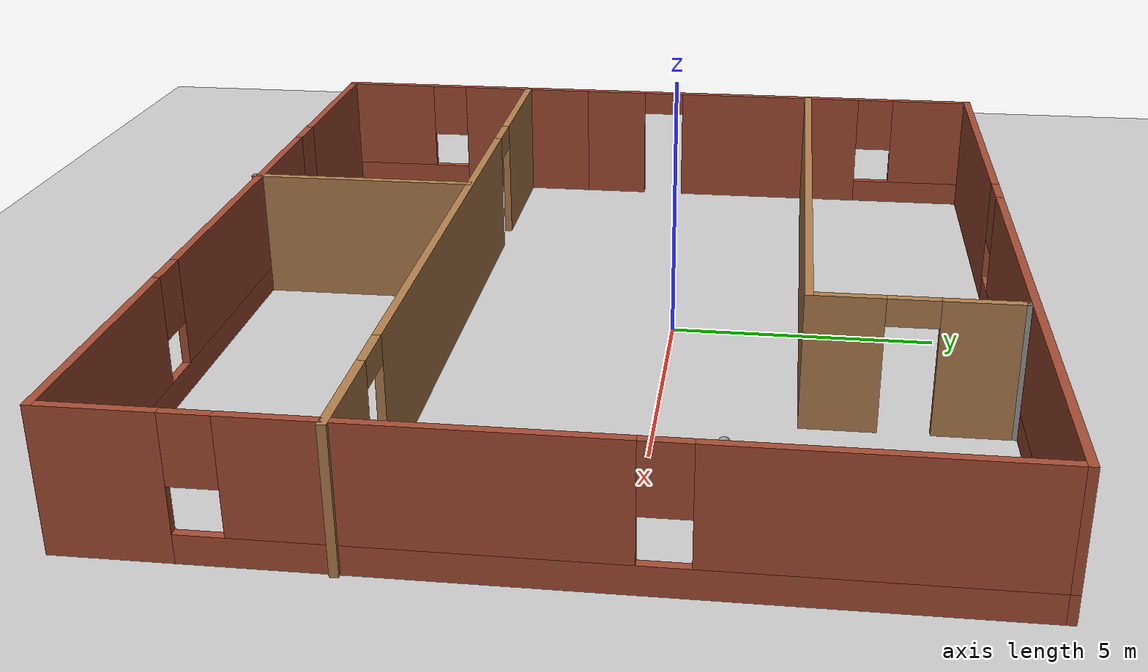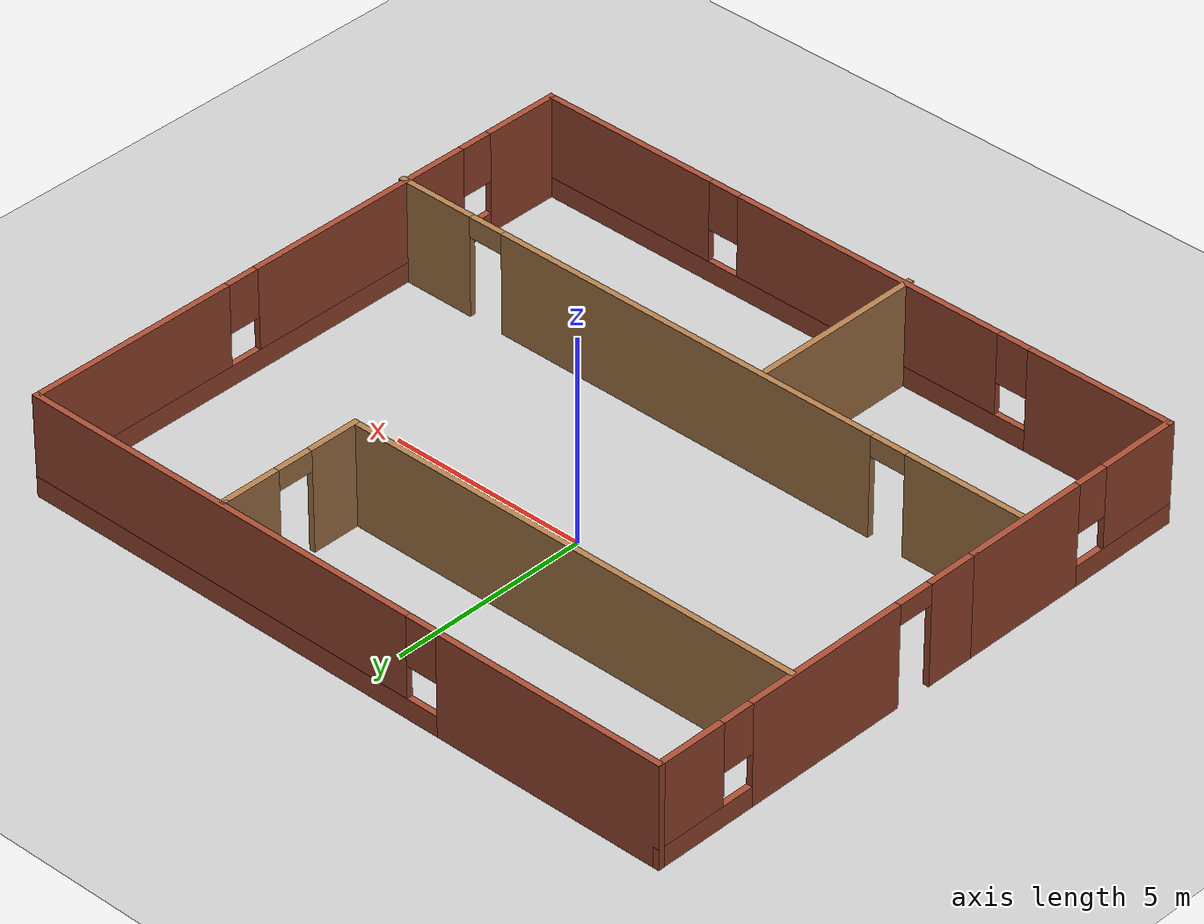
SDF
<sdf version="1.6">
 <world name="default">
  <light name="sun" type="directional">
   <pose>0 0 10 0 -0 0</pose>
   <diffuse>0.8 0.8 0.8 1</diffuse>
   <specular>0.1 0.1 0.1 1</specular>
   <attenuation>
    <range>1000</range>
    <constant>0.9</constant>
    <linear>0.01</linear>
    <quadratic>0.001</quadratic>
   </attenuation>
   <direction>-0.5 0.5 -1</direction>
  </light>
  <model name="ground_plane">
   <static>1</static>
   <link name="link">
    <collision name="collision">
     <geometry><plane><normal>0 0 1</normal><size>100 100</size></plane></geometry>
     <surface><friction><ode><mu>100</mu><mu2>50</mu2></ode></friction></surface>
    </collision>
    <visual name="visual">
     <cast_shadows>0</cast_shadows>
     <geometry><plane><normal>0 0 1</normal><size>100 100</size></plane></geometry>
     <material>
      <script><uri>file://media/materials/scripts/gazebo.material</uri><name>Gazebo/Grey</name></script>
     </material>
    </visual>
   </link>
  </model>
  <gravity>0 0 -9.8</gravity>
  <magnetic_field>6e-06 2.3e-05 -4.2e-05</magnetic_field>
  <atmosphere type="adiabatic"/>
  <physics name="default_physics" default="0" type="ode">
   <max_step_size>0.001</max_step_size>
   <real_time_factor>1</real_time_factor>
   <real_time_update_rate>1000</real_time_update_rate>
  </physics>
  <scene><ambient>0.4 0.4 0.4 1</ambient><background>0.7 0.7 0.7 1</background><shadows>1</shadows></scene>
  <spherical_coordinates>
   <surface_model>EARTH_WGS84</surface_model>
   <latitude_deg>0</latitude_deg>
   <longitude_deg>0</longitude_deg>
   <elevation>0</elevation>
   <heading_deg>0</heading_deg>
  </spherical_coordinates>
  <model name="my_building">
   <pose>0.462 -1.1819 0 0 -0 0</pose>
   <link name="Wall_0">
    <pose>-8.462 -4.3831 0 0 0 -1.5708</pose>
    <visual name="Wall_0_Visual_0">
     <pose>-1.43162 0 1.25 0 -0 0</pose>
     <geometry><box><size>3.13675 0.15 2.5</size></box></geometry>
     <material>
      <script><uri>file://media/materials/scripts/gazebo.material</uri><name>Gazebo/Bricks</name></script>
      <ambient>1 1 1 1</ambient>
     </material>
    </visual>
    <collision name="Wall_0_Collision_0">
     <geometry><box><size>3.13675 0.15 2.5</size></box></geometry>
     <pose>-1.43162 0 1.25 0 -0 0</pose>
    </collision>
    <visual name="Wall_0_Visual_1">
     <pose>1.56838 0 0.25 0 -0 0</pose>
     <geometry><box><size>2.86325 0.15 0.5</size></box></geometry>
     <material>
      <script><uri>file://media/materials/scripts/gazebo.material</uri><name>Gazebo/Bricks</name></script>
      <ambient>1 1 1 1</ambient>
     </material>
    </visual>
    <collision name="Wall_0_Collision_1">
     <geometry><box><size>2.86325 0.15 0.5</size></box></geometry>
     <pose>1.56838 0 0.25 0 -0 0</pose>
    </collision>
    <visual name="Wall_0_Visual_2">
     <pose>1.96837 0 1.5 0 -0 0</pose>
     <geometry><box><size>2.06325 0.15 2</size></box></geometry>
     <material>
      <script><uri>file://media/materials/scripts/gazebo.material</uri><name>Gazebo/Bricks</name></script>
      <ambient>1 1 1 1</ambient>
     </material>
    </visual>
    <collision name="Wall_0_Collision_2">
     <geometry><box><size>2.06325 0.15 2</size></box></geometry>
     <pose>1.96837 0 1.5 0 -0 0</pose>
    </collision>
    <visual name="Wall_0_Visual_3">
     <pose>0.53675 0 1.9 0 -0 0</pose>
     <geometry><box><size>0.8 0.15 1.2</size></box></geometry>
     <material>
      <script><uri>file://media/materials/scripts/gazebo.material</uri><name>Gazebo/Bricks</name></script>
      <ambient>1 1 1 1</ambient>
     </material>
    </visual>
    <collision name="Wall_0_Collision_3">
     <geometry><box><size>0.8 0.15 1.2</size></box></geometry>
     <pose>0.53675 0 1.9 0 -0 0</pose>
    </collision>
   </link>
   <link name="Wall_1">
    <pose>-0.037001 -7.3081 0 0 -0 0</pose>
    <visual name="Wall_1_Visual_0">
     <pose>-6.6549 0 1.25 0 -0 0</pose>
     <geometry><box><size>3.6902 0.15 2.5</size></box></geometry>
     <material>
      <script><uri>file://media/materials/scripts/gazebo.material</uri><name>Gazebo/Bricks</name></script>
      <ambient>1 1 1 1</ambient>
     </material>
    </visual>
    <collision name="Wall_1_Collision_0">
     <geometry><box><size>3.6902 0.15 2.5</size></box></geometry>
     <pose>-6.6549 0 1.25 0 -0 0</pose>
    </collision>
    <visual name="Wall_1_Visual_1">
     <pose>1.8451 0 0.25 0 -0 0</pose>
     <geometry><box><size>13.3098 0.15 0.5</size></box></geometry>
     <material>
      <script><uri>file://media/materials/scripts/gazebo.material</uri><name>Gazebo/Bricks</name></script>
      <ambient>1 1 1 1</ambient>
     </material>
    </visual>
    <collision name="Wall_1_Collision_1">
     <geometry><box><size>13.3098 0.15 0.5</size></box></geometry>
     <pose>1.8451 0 0.25 0 -0 0</pose>
    </collision>
    <visual name="Wall_1_Visual_2">
     <pose>-0.481975 0 1.5 0 -0 0</pose>
     <geometry><box><size>7.05565 0.15 2</size></box></geometry>
     <material>
      <script><uri>file://media/materials/scripts/gazebo.material</uri><name>Gazebo/Bricks</name></script>
      <ambient>1 1 1 1</ambient>
     </material>
    </visual>
    <collision name="Wall_1_Collision_2">
     <geometry><box><size>7.05565 0.15 2</size></box></geometry>
     <pose>-0.481975 0 1.5 0 -0 0</pose>
    </collision>
    <visual name="Wall_1_Visual_3">
     <pose>6.17293 0 1.5 0 -0 0</pose>
     <geometry><box><size>4.65415 0.15 2</size></box></geometry>
     <material>
      <script><uri>file://media/materials/scripts/gazebo.material</uri><name>Gazebo/Bricks</name></script>
      <ambient>1 1 1 1</ambient>
     </material>
    </visual>
    <collision name="Wall_1_Collision_3">
     <geometry><box><size>4.65415 0.15 2</size></box></geometry>
     <pose>6.17293 0 1.5 0 -0 0</pose>
    </collision>
    <visual name="Wall_1_Visual_4">
     <pose>-4.4098 0 1.9 0 -0 0</pose>
     <geometry><box><size>0.8 0.15 1.2</size></box></geometry>
     <material>
      <script><uri>file://media/materials/scripts/gazebo.material</uri><name>Gazebo/Bricks</name></script>
      <ambient>1 1 1 1</ambient>
     </material>
    </visual>
    <collision name="Wall_1_Collision_4">
     <geometry><box><size>0.8 0.15 1.2</size></box></geometry>
     <pose>-4.4098 0 1.9 0 -0 0</pose>
    </collision>
    <visual name="Wall_1_Visual_5">
     <pose>3.44585 0 1.9 0 -0 0</pose>
     <geometry><box><size>0.8 0.15 1.2</size></box></geometry>
     <material>
      <script><uri>file://media/materials/scripts/gazebo.material</uri><name>Gazebo/Bricks</name></script>
      <ambient>1 1 1 1</ambient>
     </material>
    </visual>
    <collision name="Wall_1_Collision_5">
     <geometry><box><size>0.8 0.15 1.2</size></box></geometry>
     <pose>3.44585 0 1.9 0 -0 0</pose>
    </collision>
   </link>
   <link name="Wall_10">
    <collision name="Wall_10_Collision">
     <geometry><box><size>0.15 0.15 2.5</size></box></geometry>
     <pose>0 0 1.25 0 -0 0</pose>
    </collision>
    <visual name="Wall_10_Visual">
     <pose>0 0 1.25 0 -0 0</pose>
     <geometry><box><size>0.15 0.15 2.5</size></box></geometry>
     <material>
      <script><uri>file://media/materials/scripts/gazebo.material</uri><name>Gazebo/Grey</name></script>
      <ambient>1 1 1 1</ambient>
     </material>
    </visual>
    <pose>3.1857 7.30285 0 0 -0 0</pose>
   </link>
   <link name="Wall_12">
    <pose>0.037149 -2.989 0 0 -0 0</pose>
    <visual name="Wall_12_Visual_0">
     <pose>-6.96825 0 1.25 0 -0 0</pose>
     <geometry><box><size>3.0635 0.15 2.5</size></box></geometry>
     <material>
      <script><uri>file://media/materials/scripts/gazebo.material</uri><name>Gazebo/Wood</name></script>
      <ambient>1 1 1 1</ambient>
     </material>
    </visual>
    <collision name="Wall_12_Collision_0">
     <geometry><box><size>3.0635 0.15 2.5</size></box></geometry>
     <pose>-6.96825 0 1.25 0 -0 0</pose>
    </collision>
    <visual name="Wall_12_Visual_1">
     <pose>0.5151 0 1.25 0 -0 0</pose>
     <geometry><box><size>10.1032 0.15 2.5</size></box></geometry>
     <material>
      <script><uri>file://media/materials/scripts/gazebo.material</uri><name>Gazebo/Wood</name></script>
      <ambient>1 1 1 1</ambient>
     </material>
    </visual>
    <collision name="Wall_12_Collision_1">
     <geometry><box><size>10.1032 0.15 2.5</size></box></geometry>
     <pose>0.5151 0 1.25 0 -0 0</pose>
    </collision>
    <visual name="Wall_12_Visual_2">
     <pose>7.48335 0 1.25 0 -0 0</pose>
     <geometry><box><size>2.0333 0.15 2.5</size></box></geometry>
     <material>
      <script><uri>file://media/materials/scripts/gazebo.material</uri><name>Gazebo/Wood</name></script>
      <ambient>1 1 1 1</ambient>
     </material>
    </visual>
    <collision name="Wall_12_Collision_2">
     <geometry><box><size>2.0333 0.15 2.5</size></box></geometry>
     <pose>7.48335 0 1.25 0 -0 0</pose>
    </collision>
    <visual name="Wall_12_Visual_3">
     <pose>-4.9865 0 2.25 0 -0 0</pose>
     <geometry><box><size>0.9 0.15 0.5</size></box></geometry>
     <material>
      <script><uri>file://media/materials/scripts/gazebo.material</uri><name>Gazebo/Wood</name></script>
      <ambient>1 1 1 1</ambient>
     </material>
    </visual>
    <collision name="Wall_12_Collision_3">
     <geometry><box><size>0.9 0.15 0.5</size></box></geometry>
     <pose>-4.9865 0 2.25 0 -0 0</pose>
    </collision>
    <visual name="Wall_12_Visual_4">
     <pose>6.0167 0 2.25 0 -0 0</pose>
     <geometry><box><size>0.9 0.15 0.5</size></box></geometry>
     <material>
      <script><uri>file://media/materials/scripts/gazebo.material</uri><name>Gazebo/Wood</name></script>
      <ambient>1 1 1 1</ambient>
     </material>
    </visual>
    <collision name="Wall_12_Collision_4">
     <geometry><box><size>0.9 0.15 0.5</size></box></geometry>
     <pose>6.0167 0 2.25 0 -0 0</pose>
    </collision>
   </link>
   <link name="Wall_14">
    <collision name="Wall_14_Collision">
     <geometry><box><size>4.5 0.15 2.5</size></box></geometry>
     <pose>0 0 1.25 0 -0 0</pose>
    </collision>
    <visual name="Wall_14_Visual">
     <pose>0 0 1.25 0 -0 0</pose>
     <geometry><box><size>4.5 0.15 2.5</size></box></geometry>
     <material>
      <script><uri>file://media/materials/scripts/gazebo.material</uri><name>Gazebo/Wood</name></script>
      <ambient>1 1 1 1</ambient>
     </material>
    </visual>
    <pose>-1.5373 -5.2169 0 0 0 -1.5708</pose>
   </link>
   <link name="Wall_2">
    <pose>8.388 -0.0081 0 0 -0 1.5708</pose>
    <visual name="Wall_2_Visual_0">
     <pose>-6.38305 0 1.25 0 -0 0</pose>
     <geometry><box><size>1.9839 0.15 2.5</size></box></geometry>
     <material>
      <script><uri>file://media/materials/scripts/gazebo.material</uri><name>Gazebo/Bricks</name></script>
      <ambient>1 1 1 1</ambient>
     </material>
    </visual>
    <collision name="Wall_2_Collision_0">
     <geometry><box><size>1.9839 0.15 2.5</size></box></geometry>
     <pose>-6.38305 0 1.25 0 -0 0</pose>
    </collision>
    <visual name="Wall_2_Visual_1">
     <pose>0.99195 0 0.25 0 -0 0</pose>
     <geometry><box><size>12.7661 0.15 0.5</size></box></geometry>
     <material>
      <script><uri>file://media/materials/scripts/gazebo.material</uri><name>Gazebo/Bricks</name></script>
      <ambient>1 1 1 1</ambient>
     </material>
    </visual>
    <collision name="Wall_2_Collision_1">
     <geometry><box><size>12.7661 0.15 0.5</size></box></geometry>
     <pose>0.99195 0 0.25 0 -0 0</pose>
    </collision>
    <visual name="Wall_2_Visual_2">
     <pose>-1.6055 0 1.5 0 -0 0</pose>
     <geometry><box><size>5.9712 0.15 2</size></box></geometry>
     <material>
      <script><uri>file://media/materials/scripts/gazebo.material</uri><name>Gazebo/Bricks</name></script>
      <ambient>1 1 1 1</ambient>
     </material>
    </visual>
    <collision name="Wall_2_Collision_2">
     <geometry><box><size>5.9712 0.15 2</size></box></geometry>
     <pose>-1.6055 0 1.5 0 -0 0</pose>
    </collision>
    <visual name="Wall_2_Visual_3">
     <pose>4.77755 0 1.5 0 -0 0</pose>
     <geometry><box><size>5.1949 0.15 2</size></box></geometry>
     <material>
      <script><uri>file://media/materials/scripts/gazebo.material</uri><name>Gazebo/Bricks</name></script>
      <ambient>1 1 1 1</ambient>
     </material>
    </visual>
    <collision name="Wall_2_Collision_3">
     <geometry><box><size>5.1949 0.15 2</size></box></geometry>
     <pose>4.77755 0 1.5 0 -0 0</pose>
    </collision>
    <visual name="Wall_2_Visual_4">
     <pose>-4.9911 0 1.9 0 -0 0</pose>
     <geometry><box><size>0.8 0.15 1.2</size></box></geometry>
     <material>
      <script><uri>file://media/materials/scripts/gazebo.material</uri><name>Gazebo/Bricks</name></script>
      <ambient>1 1 1 1</ambient>
     </material>
    </visual>
    <collision name="Wall_2_Collision_4">
     <geometry><box><size>0.8 0.15 1.2</size></box></geometry>
     <pose>-4.9911 0 1.9 0 -0 0</pose>
    </collision>
    <visual name="Wall_2_Visual_5">
     <pose>1.7801 0 1.9 0 -0 0</pose>
     <geometry><box><size>0.8 0.15 1.2</size></box></geometry>
     <material>
      <script><uri>file://media/materials/scripts/gazebo.material</uri><name>Gazebo/Bricks</name></script>
      <ambient>1 1 1 1</ambient>
     </material>
    </visual>
    <collision name="Wall_2_Collision_5">
     <geometry><box><size>0.8 0.15 1.2</size></box></geometry>
     <pose>1.7801 0 1.9 0 -0 0</pose>
    </collision>
   </link>
   <link name="Wall_5">
    <pose>-8.462 2.9669 0 0 -0 1.5708</pose>
    <visual name="Wall_5_Visual_0">
     <pose>-3.81305 0 1.25 0 -0 0</pose>
     <geometry><box><size>1.3739 0.15 2.5</size></box></geometry>
     <material>
      <script><uri>file://media/materials/scripts/gazebo.material</uri><name>Gazebo/Bricks</name></script>
      <ambient>1 1 1 1</ambient>
     </material>
    </visual>
    <collision name="Wall_5_Collision_0">
     <geometry><box><size>1.3739 0.15 2.5</size></box></geometry>
     <pose>-3.81305 0 1.25 0 -0 0</pose>
    </collision>
    <visual name="Wall_5_Visual_1">
     <pose>-0.151575 0 1.25 0 -0 0</pose>
     <geometry><box><size>4.14905 0.15 2.5</size></box></geometry>
     <material>
      <script><uri>file://media/materials/scripts/gazebo.material</uri><name>Gazebo/Bricks</name></script>
      <ambient>1 1 1 1</ambient>
     </material>
    </visual>
    <collision name="Wall_5_Collision_1">
     <geometry><box><size>4.14905 0.15 2.5</size></box></geometry>
     <pose>-0.151575 0 1.25 0 -0 0</pose>
    </collision>
    <visual name="Wall_5_Visual_2">
     <pose>3.21148 0 0.25 0 -0 0</pose>
     <geometry><box><size>2.57705 0.15 0.5</size></box></geometry>
     <material>
      <script><uri>file://media/materials/scripts/gazebo.material</uri><name>Gazebo/Bricks</name></script>
      <ambient>1 1 1 1</ambient>
     </material>
    </visual>
    <collision name="Wall_5_Collision_2">
     <geometry><box><size>2.57705 0.15 0.5</size></box></geometry>
     <pose>3.21148 0 0.25 0 -0 0</pose>
    </collision>
    <visual name="Wall_5_Visual_3">
     <pose>3.61147 0 1.5 0 -0 0</pose>
     <geometry><box><size>1.77705 0.15 2</size></box></geometry>
     <material>
      <script><uri>file://media/materials/scripts/gazebo.material</uri><name>Gazebo/Bricks</name></script>
      <ambient>1 1 1 1</ambient>
     </material>
    </visual>
    <collision name="Wall_5_Collision_3">
     <geometry><box><size>1.77705 0.15 2</size></box></geometry>
     <pose>3.61147 0 1.5 0 -0 0</pose>
    </collision>
    <visual name="Wall_5_Visual_4">
     <pose>2.32295 0 1.9 0 -0 0</pose>
     <geometry><box><size>0.8 0.15 1.2</size></box></geometry>
     <material>
      <script><uri>file://media/materials/scripts/gazebo.material</uri><name>Gazebo/Bricks</name></script>
      <ambient>1 1 1 1</ambient>
     </material>
    </visual>
    <collision name="Wall_5_Collision_4">
     <geometry><box><size>0.8 0.15 1.2</size></box></geometry>
     <pose>2.32295 0 1.9 0 -0 0</pose>
    </collision>
    <visual name="Wall_5_Visual_5">
     <pose>-2.6761 0 2.25 0 -0 0</pose>
     <geometry><box><size>0.9 0.15 0.5</size></box></geometry>
     <material>
      <script><uri>file://media/materials/scripts/gazebo.material</uri><name>Gazebo/Bricks</name></script>
      <ambient>1 1 1 1</ambient>
     </material>
    </visual>
    <collision name="Wall_5_Collision_5">
     <geometry><box><size>0.9 0.15 0.5</size></box></geometry>
     <pose>-2.6761 0 2.25 0 -0 0</pose>
    </collision>
   </link>
   <link name="Wall_6">
    <pose>-0.037001 7.3919 0 0 -0 0</pose>
    <visual name="Wall_6_Visual_0">
     <pose>-5.59697 0 1.25 0 -0 0</pose>
     <geometry><box><size>5.80635 0.15 2.5</size></box></geometry>
     <material>
      <script><uri>file://media/materials/scripts/gazebo.material</uri><name>Gazebo/Bricks</name></script>
      <ambient>1 1 1 1</ambient>
     </material>
    </visual>
    <collision name="Wall_6_Collision_0">
     <geometry><box><size>5.80635 0.15 2.5</size></box></geometry>
     <pose>-5.59697 0 1.25 0 -0 0</pose>
    </collision>
    <visual name="Wall_6_Visual_1">
     <pose>2.90317 0 0.25 0 -0 0</pose>
     <geometry><box><size>11.1939 0.15 0.5</size></box></geometry>
     <material>
      <script><uri>file://media/materials/scripts/gazebo.material</uri><name>Gazebo/Bricks</name></script>
      <ambient>1 1 1 1</ambient>
     </material>
    </visual>
    <collision name="Wall_6_Collision_1">
     <geometry><box><size>11.1939 0.15 0.5</size></box></geometry>
     <pose>2.90317 0 0.25 0 -0 0</pose>
    </collision>
    <visual name="Wall_6_Visual_2">
     <pose>3.30317 0 1.5 0 -0 0</pose>
     <geometry><box><size>10.3939 0.15 2</size></box></geometry>
     <material>
      <script><uri>file://media/materials/scripts/gazebo.material</uri><name>Gazebo/Bricks</name></script>
      <ambient>1 1 1 1</ambient>
     </material>
    </visual>
    <collision name="Wall_6_Collision_2">
     <geometry><box><size>10.3939 0.15 2</size></box></geometry>
     <pose>3.30317 0 1.5 0 -0 0</pose>
    </collision>
    <visual name="Wall_6_Visual_3">
     <pose>-2.2938 0 1.9 0 -0 0</pose>
     <geometry><box><size>0.8 0.15 1.2</size></box></geometry>
     <material>
      <script><uri>file://media/materials/scripts/gazebo.material</uri><name>Gazebo/Bricks</name></script>
      <ambient>1 1 1 1</ambient>
     </material>
    </visual>
    <collision name="Wall_6_Collision_3">
     <geometry><box><size>0.8 0.15 1.2</size></box></geometry>
     <pose>-2.2938 0 1.9 0 -0 0</pose>
    </collision>
   </link>
   <link name="Wall_8">
    <collision name="Wall_8_Collision">
     <geometry><box><size>11.75 0.15 2.5</size></box></geometry>
     <pose>0 0 1.25 0 -0 0</pose>
    </collision>
    <visual name="Wall_8_Visual">
     <pose>0 0 1.25 0 -0 0</pose>
     <geometry><box><size>11.75 0.15 2.5</size></box></geometry>
     <material>
      <script><uri>file://media/materials/scripts/gazebo.material</uri><name>Gazebo/Wood</name></script>
      <ambient>1 1 1 1</ambient>
     </material>
    </visual>
    <pose>-2.6143 3.70285 0 0 -0 0</pose>
   </link>
   <link name="Wall_9">
    <pose>3.1857 5.50285 0 0 -0 1.5708</pose>
    <visual name="Wall_9_Visual_0">
     <pose>-1.20287 0 1.25 0 -0 0</pose>
     <geometry><box><size>1.34425 0.15 2.5</size></box></geometry>
     <material>
      <script><uri>file://media/materials/scripts/gazebo.material</uri><name>Gazebo/Wood</name></script>
      <ambient>1 1 1 1</ambient>
     </material>
    </visual>
    <collision name="Wall_9_Collision_0">
     <geometry><box><size>1.34425 0.15 2.5</size></box></geometry>
     <pose>-1.20287 0 1.25 0 -0 0</pose>
    </collision>
    <visual name="Wall_9_Visual_1">
     <pose>1.12213 0 1.25 0 -0 0</pose>
     <geometry><box><size>1.50575 0.15 2.5</size></box></geometry>
     <material>
      <script><uri>file://media/materials/scripts/gazebo.material</uri><name>Gazebo/Wood</name></script>
      <ambient>1 1 1 1</ambient>
     </material>
    </visual>
    <collision name="Wall_9_Collision_1">
     <geometry><box><size>1.50575 0.15 2.5</size></box></geometry>
     <pose>1.12213 0 1.25 0 -0 0</pose>
    </collision>
    <visual name="Wall_9_Visual_2">
     <pose>-0.08075 0 2.25 0 -0 0</pose>
     <geometry><box><size>0.9 0.15 0.5</size></box></geometry>
     <material>
      <script><uri>file://media/materials/scripts/gazebo.material</uri><name>Gazebo/Wood</name></script>
      <ambient>1 1 1 1</ambient>
     </material>
    </visual>
    <collision name="Wall_9_Collision_2">
     <geometry><box><size>0.9 0.15 0.5</size></box></geometry>
     <pose>-0.08075 0 2.25 0 -0 0</pose>
    </collision>
   </link>
   <static>1</static>
  </model>
  <model name="my_ball">
   <link name="link_0">
    <inertial>
     <mass>1</mass>
     <inertia><ixx>0.1</ixx><ixy>0</ixy><ixz>0</ixz><iyy>0.1</iyy><iyz>0</iyz><izz>0.1</izz></inertia>
    </inertial>
    <visual name="visual">
     <geometry><sphere><radius>0.1</radius></sphere></geometry>
     <material>
      <lighting>1</lighting>
      <script><uri>file://media/materials/scripts/gazebo.material</uri><name>Gazebo/Grey</name></script>
      <shader type="pixel"><normal_map>__default__</normal_map></shader>
      <ambient>1 1 1 1</ambient>
      <diffuse>1 1 1 1</diffuse>
      <specular>1 1 1 1</specular>
      <emissive>1 1 1 1</emissive>
     </material>
    </visual>
    <collision name="collision">
     <geometry><sphere><radius>0.1</radius></sphere></geometry>
     <surface>
      <friction>
       <ode><mu>1</mu><mu2>1</mu2><fdir1>0 0 0</fdir1><slip1>0</slip1><slip2>0</slip2></ode>
       <torsional>
        <coefficient>1</coefficient>
        <patch_radius>0</patch_radius>
        <surface_radius>0</surface_radius>
        <use_patch_radius>1</use_patch_radius>
        <ode><slip>0</slip></ode>
       </torsional>
      </friction>
      <bounce><restitution_coefficient>0</restitution_coefficient><threshold>1e+06</threshold></bounce>
      <contact>
       <collide_without_contact>0</collide_without_contact>
       <collide_without_contact_bitmask>1</collide_without_contact_bitmask>
       <collide_bitmask>1</collide_bitmask>
       <ode>
        <soft_cfm>0</soft_cfm>
        <soft_erp>0.2</soft_erp>
        <kp>1e+13</kp>
        <kd>1</kd>
        <max_vel>0.01</max_vel>
        <min_depth>0</min_depth>
       </ode>
       <bullet>
        <split_impulse>1</split_impulse>
        <split_impulse_penetration_threshold>-0.01</split_impulse_penetration_threshold>
        <soft_cfm>0</soft_cfm>
        <soft_erp>0.2</soft_erp>
        <kp>1e+13</kp>
        <kd>1</kd>
       </bullet>
      </contact>
     </surface>
    </collision>
   </link>
   <static>0</static>
   <pose>4.53388 1.2278 0.1 0 -0 0</pose>
  </model>
 </world>
</sdf>
